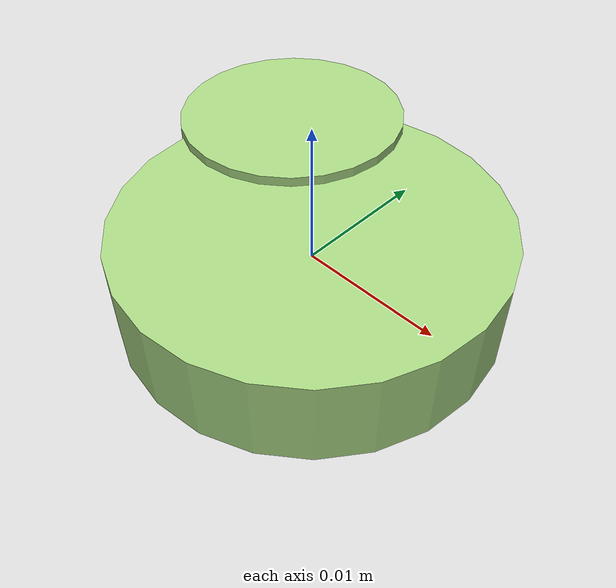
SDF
<?xml version="1.0" ?>
<!-- |    This document was autogenerated by xmacro from data/veggie_template/veggie_base.sdf.xacro  | -->
<!-- |    EDITING THIS FILE BY HAND IS NOT RECOMMENDED                                               | -->
<sdf version="1.8">
	<!-- Parameters -->
	<!-- Base -->
	<!-- Joint 0 -->
	<!-- Link 1 -->
	<!-- Joint 1 -->
	<!-- Link 2 -->
	<!-- Primitives -->
	<!-- All dimensions are half -->
	<!-- Object -->
	<model name="veggie">
		<!-- link0 -->
		<link name="link0">
			<inertial>
				<mass>0.003526647294688504</mass>
				<inertia>
					<ixx>1.6625275582864276e-07</ixx>
					<ixy>0</ixy>
					<ixz>0</ixz>
					<iyy>1.6625275582864276e-07</iyy>
					<iyz>0</iyz>
					<izz>3.0827116530124704e-07</izz>
				</inertia>
			</inertial>
			<visual name="link0_visual">
				<pose>0 0 0 0 0 0</pose>
				<geometry>
					<cylinder>
						<radius>0.013222099961704124</radius>
						<length>0.0064211123194165</length>
					</cylinder>
				</geometry>
				<material>
					<ambient>0.659 0.839 0.514 1</ambient>
					<diffuse>0.659 0.839 0.514 1</diffuse>
					<specular>0 0 0 0</specular>
					<emissive>0 0 0 1</emissive>
				</material>
			</visual>
			<collision name="link0_collision">
				<pose>0 0 0 0 0 0 </pose>
				<geometry>
					<cylinder>
						<radius>0.013222099961704124</radius>
						<length>0.0064211123194165</length>
					</cylinder>
				</geometry>
			</collision>
		</link>
		<!-- link1 -->
		<joint name="joint0" type="fixed">
			<pose relative_to="link0">-0.00934669714530121 0.007449994096549502 0.0006167383583062251 0.0 0.0 0.0</pose>
			<parent>link0</parent>
			<child>link1</child>
		</joint>
		<link name="link1">
			<pose relative_to="joint0">0 0 0 0 0 0</pose>
			<inertial>
				<mass>0.0014826338722693465</mass>
				<inertia>
					<ixx>3.192273563523002e-08</ixx>
					<ixy>0</ixy>
					<ixz>0</ixz>
					<iyy>3.192273563523002e-08</iyy>
					<iyz>0</iyz>
					<izz>5.31314198241773e-08</izz>
				</inertia>
			</inertial>
			<visual name="link1_visual">
				<pose>0 0 0 0 0 0</pose>
				<geometry>
					<cylinder>
						<radius>0.008465911998686248</radius>
						<length>0.006584692976770793</length>
					</cylinder>
				</geometry>
				<material>
					<ambient>0.659 0.839 0.514 1</ambient>
					<diffuse>0.659 0.839 0.514 1</diffuse>
					<specular>0 0 0 0</specular>
					<emissive>0 0 0 1</emissive>
				</material>
			</visual>
			<collision name="link1_collision">
				<pose>0 0 0 0 0 0 </pose>
				<geometry>
					<cylinder>
						<radius>0.008465911998686248</radius>
						<length>0.006584692976770793</length>
					</cylinder>
				</geometry>
			</collision>
		</link>
		<!-- link2 -->
	</model>
</sdf>
